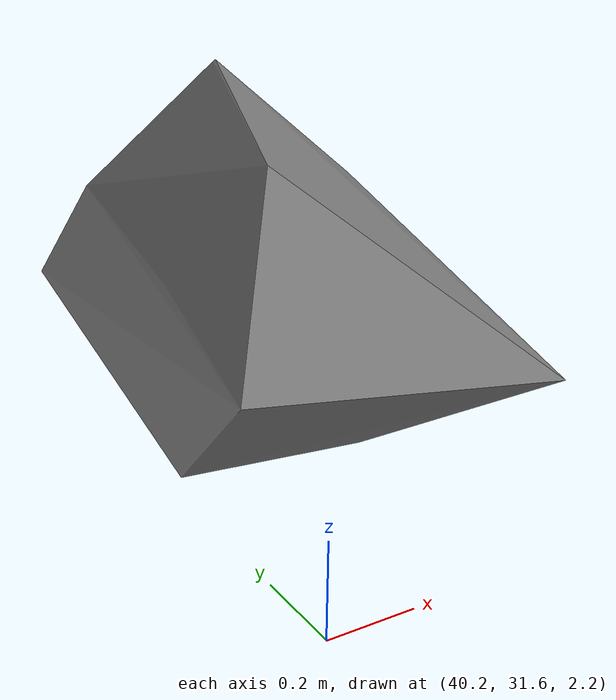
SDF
<sdf version="1.8">
 <model name="blue_mountains">
  <static>true</static>
  <link name="forest_24_23">
   <collision name="tree_63_trunk">
    <pose>40.13287 32.44435 1.371359 0 0 3.120338</pose>
    <geometry><cylinder><radius>0.04496492</radius><length>2.153702</length></cylinder></geometry>
   </collision>
   <collision name="plant_63_crown_0">
    <pose>40.15086 32.44397 0.294508 0 0 3.120338</pose>
    <geometry>
     <mesh>
      <uri>model://blue_mountains/meshes/canopy_8_0.dae</uri>
      <scale>0.1798597 0.1798597 0.1602547</scale>
     </mesh>
    </geometry>
   </collision>
   <collision name="plant_63_crown_1">
    <pose>40.15086 32.44397 0.294508 0 0 3.120338</pose>
    <geometry>
     <mesh>
      <uri>model://blue_mountains/meshes/canopy_8_1.dae</uri>
      <scale>0.1798597 0.1798597 0.1602547</scale>
     </mesh>
    </geometry>
   </collision>
   <collision name="tree_133_trunk">
    <pose>43.01792 33.36647 0.8769375 0 0 1.92369</pose>
    <geometry><cylinder><radius>0.04818025</radius><length>2.313583</length></cylinder></geometry>
   </collision>
   <collision name="plant_133_crown_0">
    <pose>43.02458 33.34838 -0.2798541 0 0 1.92369</pose>
    <geometry>
     <mesh><uri>model://blue_mountains/meshes/canopy_5_0.dae</uri><scale>0.192721 0.192721 0.1738995</scale></mesh>
    </geometry>
   </collision>
   <collision name="plant_133_crown_1">
    <pose>43.02458 33.34838 -0.2798541 0 0 1.92369</pose>
    <geometry>
     <mesh><uri>model://blue_mountains/meshes/canopy_5_1.dae</uri><scale>0.192721 0.192721 0.1738995</scale></mesh>
    </geometry>
   </collision>
   <collision name="tree_181_trunk">
    <pose>48.4752 35.62887 -0.2063599 0 0 1.686929</pose>
    <geometry><cylinder><radius>0.04569363</radius><length>2.420476</length></cylinder></geometry>
   </collision>
   <collision name="plant_181_crown_0">
    <pose>48.47732 35.61072 -1.416598 0 0 1.686929</pose>
    <geometry>
     <mesh>
      <uri>model://blue_mountains/meshes/canopy_7_0.dae</uri>
      <scale>0.1827745 0.1827745 0.1819868</scale>
     </mesh>
    </geometry>
   </collision>
   <collision name="plant_181_crown_1">
    <pose>48.47732 35.61072 -1.416598 0 0 1.686929</pose>
    <geometry>
     <mesh>
      <uri>model://blue_mountains/meshes/canopy_7_1.dae</uri>
      <scale>0.1827745 0.1827745 0.1819868</scale>
     </mesh>
    </geometry>
   </collision>
   <collision name="tree_193_trunk">
    <pose>48.77027 35.48744 0.2644566 0 0 -1.358044</pose>
    <geometry><cylinder><radius>0.05929014</radius><length>3.421426</length></cylinder></geometry>
   </collision>
   <collision name="plant_193_crown_0">
    <pose>48.76526 35.51062 -1.446256 0 0 -1.358044</pose>
    <geometry>
     <mesh>
      <uri>model://blue_mountains/meshes/canopy_3_0.dae</uri>
      <scale>0.2371606 0.2371606 0.2543671</scale>
     </mesh>
    </geometry>
   </collision>
   <collision name="plant_193_crown_1">
    <pose>48.76526 35.51062 -1.446256 0 0 -1.358044</pose>
    <geometry>
     <mesh>
      <uri>model://blue_mountains/meshes/canopy_3_1.dae</uri>
      <scale>0.2371606 0.2371606 0.2543671</scale>
     </mesh>
    </geometry>
   </collision>
   <collision name="tree_196_trunk">
    <pose>44.47986 32.27258 1.41354 0 0 -1.529784</pose>
    <geometry><cylinder><radius>0.05664877</radius><length>3.592838</length></cylinder></geometry>
   </collision>
   <collision name="plant_196_crown_0">
    <pose>44.47894 32.29522 -0.3828788 0 0 -1.529784</pose>
    <geometry>
     <mesh>
      <uri>model://blue_mountains/meshes/canopy_8_0.dae</uri>
      <scale>0.2265951 0.2265951 0.2673393</scale>
     </mesh>
    </geometry>
   </collision>
   <collision name="plant_196_crown_1">
    <pose>44.47894 32.29522 -0.3828788 0 0 -1.529784</pose>
    <geometry>
     <mesh>
      <uri>model://blue_mountains/meshes/canopy_8_1.dae</uri>
      <scale>0.2265951 0.2265951 0.2673393</scale>
     </mesh>
    </geometry>
   </collision>
   <collision name="tree_221_trunk">
    <pose>49.88709 32.44725 -0.2512631 0 0 -0.7159583</pose>
    <geometry><cylinder><radius>0.03636711</radius><length>2.227354</length></cylinder></geometry>
   </collision>
   <collision name="plant_221_crown_0">
    <pose>49.87611 32.45679 -1.36494 0 0 -0.7159583</pose>
    <geometry>
     <mesh>
      <uri>model://blue_mountains/meshes/canopy_6_0.dae</uri>
      <scale>0.1454684 0.1454684 0.1641831</scale>
     </mesh>
    </geometry>
   </collision>
   <collision name="plant_221_crown_1">
    <pose>49.87611 32.45679 -1.36494 0 0 -0.7159583</pose>
    <geometry>
     <mesh>
      <uri>model://blue_mountains/meshes/canopy_6_1.dae</uri>
      <scale>0.1454684 0.1454684 0.1641831</scale>
     </mesh>
    </geometry>
   </collision>
   <collision name="tree_222_trunk">
    <pose>44.24643 35.03421 0.3601375 0 0 -0.4577788</pose>
    <geometry><cylinder><radius>0.04216621</radius><length>2.179409</length></cylinder></geometry>
   </collision>
   <collision name="plant_222_crown_0">
    <pose>44.2313 35.04167 -0.7295671 0 0 -0.4577788</pose>
    <geometry>
     <mesh>
      <uri>model://blue_mountains/meshes/canopy_8_0.dae</uri>
      <scale>0.1686648 0.1686648 0.1621676</scale>
     </mesh>
    </geometry>
   </collision>
   <collision name="plant_222_crown_1">
    <pose>44.2313 35.04167 -0.7295671 0 0 -0.4577788</pose>
    <geometry>
     <mesh>
      <uri>model://blue_mountains/meshes/canopy_8_1.dae</uri>
      <scale>0.1686648 0.1686648 0.1621676</scale>
     </mesh>
    </geometry>
   </collision>
   <collision name="tree_244_trunk">
    <pose>46.02188 33.78899 0.9244834 0 0 -3.104878</pose>
    <geometry><cylinder><radius>0.05456662</radius><length>3.517528</length></cylinder></geometry>
   </collision>
   <collision name="plant_244_crown_0">
    <pose>46.04369 33.78979 -0.8342805 0 0 -3.104878</pose>
    <geometry>
     <mesh>
      <uri>model://blue_mountains/meshes/canopy_6_0.dae</uri>
      <scale>0.2182665 0.2182665 0.2592846</scale>
     </mesh>
    </geometry>
   </collision>
   <collision name="plant_244_crown_1">
    <pose>46.04369 33.78979 -0.8342805 0 0 -3.104878</pose>
    <geometry>
     <mesh>
      <uri>model://blue_mountains/meshes/canopy_6_1.dae</uri>
      <scale>0.2182665 0.2182665 0.2592846</scale>
     </mesh>
    </geometry>
   </collision>
   <collision name="tree_320_trunk">
    <pose>41.53401 35.16311 1.270549 0 0 2.550211</pose>
    <geometry><cylinder><radius>0.06153186</radius><length>3.19815</length></cylinder></geometry>
   </collision>
   <collision name="plant_320_crown_0">
    <pose>41.55444 35.14938 -0.328526 0 0 2.550211</pose>
    <geometry>
     <mesh>
      <uri>model://blue_mountains/meshes/canopy_4_0.dae</uri>
      <scale>0.2461274 0.2461274 0.2383155</scale>
     </mesh>
    </geometry>
   </collision>
   <collision name="plant_320_crown_1">
    <pose>41.55444 35.14938 -0.328526 0 0 2.550211</pose>
    <geometry>
     <mesh>
      <uri>model://blue_mountains/meshes/canopy_4_1.dae</uri>
      <scale>0.2461274 0.2461274 0.2383155</scale>
     </mesh>
    </geometry>
   </collision>
   <collision name="tree_333_trunk">
    <pose>44.86189 34.37069 1.171243 0 0 -2.350161</pose>
    <geometry><cylinder><radius>0.06304115</radius><length>3.805951</length></cylinder></geometry>
   </collision>
   <collision name="plant_333_crown_0">
    <pose>44.87962 34.38863 -0.7317328 0 0 -2.350161</pose>
    <geometry>
     <mesh>
      <uri>model://blue_mountains/meshes/canopy_6_0.dae</uri>
      <scale>0.2521646 0.2521646 0.2805449</scale>
     </mesh>
    </geometry>
   </collision>
   <collision name="plant_333_crown_1">
    <pose>44.87962 34.38863 -0.7317328 0 0 -2.350161</pose>
    <geometry>
     <mesh>
      <uri>model://blue_mountains/meshes/canopy_6_1.dae</uri>
      <scale>0.2521646 0.2521646 0.2805449</scale>
     </mesh>
    </geometry>
   </collision>
   <collision name="tree_342_trunk">
    <pose>45.70407 33.61551 0.4148373 0 0 0.8434419</pose>
    <geometry><cylinder><radius>0.05001412</radius><length>2.336345</length></cylinder></geometry>
   </collision>
   <collision name="plant_342_crown_0">
    <pose>45.69077 33.60057 -0.753335 0 0 0.8434419</pose>
    <geometry>
     <mesh>
      <uri>model://blue_mountains/meshes/canopy_3_0.dae</uri>
      <scale>0.2000565 0.2000565 0.1736964</scale>
     </mesh>
    </geometry>
   </collision>
   <collision name="plant_342_crown_1">
    <pose>45.69077 33.60057 -0.753335 0 0 0.8434419</pose>
    <geometry>
     <mesh>
      <uri>model://blue_mountains/meshes/canopy_3_1.dae</uri>
      <scale>0.2000565 0.2000565 0.1736964</scale>
     </mesh>
    </geometry>
   </collision>
   <collision name="tree_404_trunk">
    <pose>49.0341 30.88734 0.7770339 0 0 0.6972307</pose>
    <geometry><cylinder><radius>0.06946519</radius><length>3.703028</length></cylinder></geometry>
   </collision>
   <collision name="plant_404_crown_0">
    <pose>49.0128 30.8695 -1.07448 0 0 0.6972307</pose>
    <geometry>
     <mesh>
      <uri>model://blue_mountains/meshes/canopy_8_0.dae</uri>
      <scale>0.2778608 0.2778608 0.2755385</scale>
     </mesh>
    </geometry>
   </collision>
   <collision name="plant_404_crown_1">
    <pose>49.0128 30.8695 -1.07448 0 0 0.6972307</pose>
    <geometry>
     <mesh>
      <uri>model://blue_mountains/meshes/canopy_8_1.dae</uri>
      <scale>0.2778608 0.2778608 0.2755385</scale>
     </mesh>
    </geometry>
   </collision>
   <collision name="tree_420_trunk">
    <pose>45.51305 36.2199 0.6203337 0 0 1.662776</pose>
    <geometry><cylinder><radius>0.05465964</radius><length>3.44137</length></cylinder></geometry>
   </collision>
   <collision name="plant_420_crown_0">
    <pose>45.51506 36.19812 -1.100351 0 0 1.662776</pose>
    <geometry>
     <mesh>
      <uri>model://blue_mountains/meshes/canopy_6_0.dae</uri>
      <scale>0.2186386 0.2186386 0.2536708</scale>
     </mesh>
    </geometry>
   </collision>
   <collision name="plant_420_crown_1">
    <pose>45.51506 36.19812 -1.100351 0 0 1.662776</pose>
    <geometry>
     <mesh>
      <uri>model://blue_mountains/meshes/canopy_6_1.dae</uri>
      <scale>0.2186386 0.2186386 0.2536708</scale>
     </mesh>
    </geometry>
   </collision>
   <collision name="tree_443_trunk">
    <pose>40.06396 30.05077 1.961693 0 0 -2.039555</pose>
    <geometry><cylinder><radius>0.05102115</radius><length>2.809547</length></cylinder></geometry>
   </collision>
   <collision name="plant_443_crown_0">
    <pose>40.07318 30.06898 0.5569193 0 0 -2.039555</pose>
    <geometry>
     <mesh>
      <uri>model://blue_mountains/meshes/canopy_0_0.dae</uri>
      <scale>0.2040846 0.2040846 0.2072024</scale>
     </mesh>
    </geometry>
   </collision>
   <collision name="plant_443_crown_1">
    <pose>40.07318 30.06898 0.5569193 0 0 -2.039555</pose>
    <geometry>
     <mesh>
      <uri>model://blue_mountains/meshes/canopy_0_1.dae</uri>
      <scale>0.2040846 0.2040846 0.2072024</scale>
     </mesh>
    </geometry>
   </collision>
   <collision name="tree_444_trunk">
    <pose>47.08671 32.81961 0.3163474 0 0 0.4705584</pose>
    <geometry><cylinder><radius>0.04144598</radius><length>2.414692</length></cylinder></geometry>
   </collision>
   <collision name="plant_444_crown_0">
    <pose>47.07194 32.8121 -0.8909988 0 0 0.4705584</pose>
    <geometry>
     <mesh>
      <uri>model://blue_mountains/meshes/canopy_6_0.dae</uri>
      <scale>0.1657839 0.1657839 0.1779922</scale>
     </mesh>
    </geometry>
   </collision>
   <collision name="plant_444_crown_1">
    <pose>47.07194 32.8121 -0.8909988 0 0 0.4705584</pose>
    <geometry>
     <mesh>
      <uri>model://blue_mountains/meshes/canopy_6_1.dae</uri>
      <scale>0.1657839 0.1657839 0.1779922</scale>
     </mesh>
    </geometry>
   </collision>
   <collision name="tree_454_trunk">
    <pose>47.91831 34.78909 0.6765665 0 0 -1.448868</pose>
    <geometry><cylinder><radius>0.06472133</radius><length>3.851346</length></cylinder></geometry>
   </collision>
   <collision name="plant_454_crown_0">
    <pose>47.91516 34.81479 -1.249107 0 0 -1.448868</pose>
    <geometry>
     <mesh>
      <uri>model://blue_mountains/meshes/canopy_3_0.dae</uri>
      <scale>0.2588853 0.2588853 0.2863297</scale>
     </mesh>
    </geometry>
   </collision>
   <collision name="plant_454_crown_1">
    <pose>47.91516 34.81479 -1.249107 0 0 -1.448868</pose>
    <geometry>
     <mesh>
      <uri>model://blue_mountains/meshes/canopy_3_1.dae</uri>
      <scale>0.2588853 0.2588853 0.2863297</scale>
     </mesh>
    </geometry>
   </collision>
   <collision name="tree_466_trunk">
    <pose>43.44482 31.25268 1.157423 0 0 0.7242058</pose>
    <geometry><cylinder><radius>0.04983238</radius><length>2.475319</length></cylinder></geometry>
   </collision>
   <collision name="plant_466_crown_0">
    <pose>43.42989 31.23947 -0.08023643 0 0 0.7242058</pose>
    <geometry>
     <mesh>
      <uri>model://blue_mountains/meshes/canopy_0_0.dae</uri>
      <scale>0.1993295 0.1993295 0.1825533</scale>
     </mesh>
    </geometry>
   </collision>
   <collision name="plant_466_crown_1">
    <pose>43.42989 31.23947 -0.08023643 0 0 0.7242058</pose>
    <geometry>
     <mesh>
      <uri>model://blue_mountains/meshes/canopy_0_1.dae</uri>
      <scale>0.1993295 0.1993295 0.1825533</scale>
     </mesh>
    </geometry>
   </collision>
   <visual name="forest_visual">
    <geometry><mesh><uri>model://blue_mountains/meshes/forest_24_23.dae</uri></mesh></geometry>
    <cast_shadows>false</cast_shadows>
   </visual>
  </link>
 </model>
</sdf>
